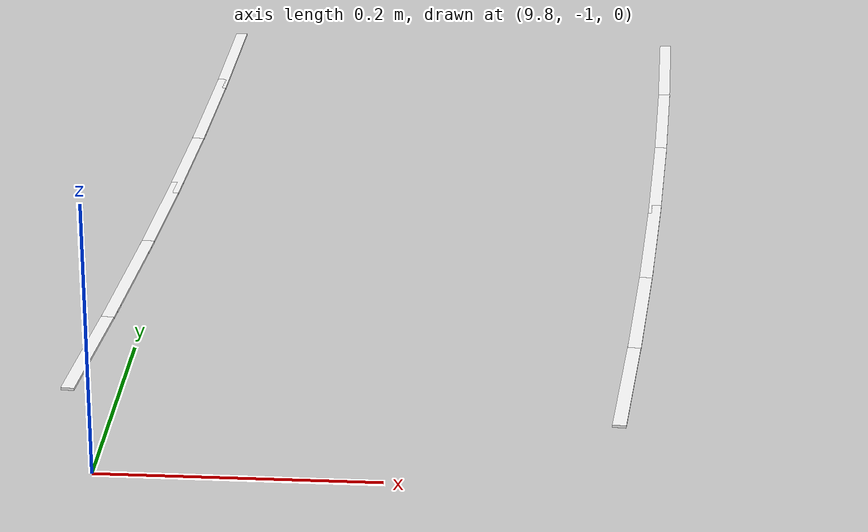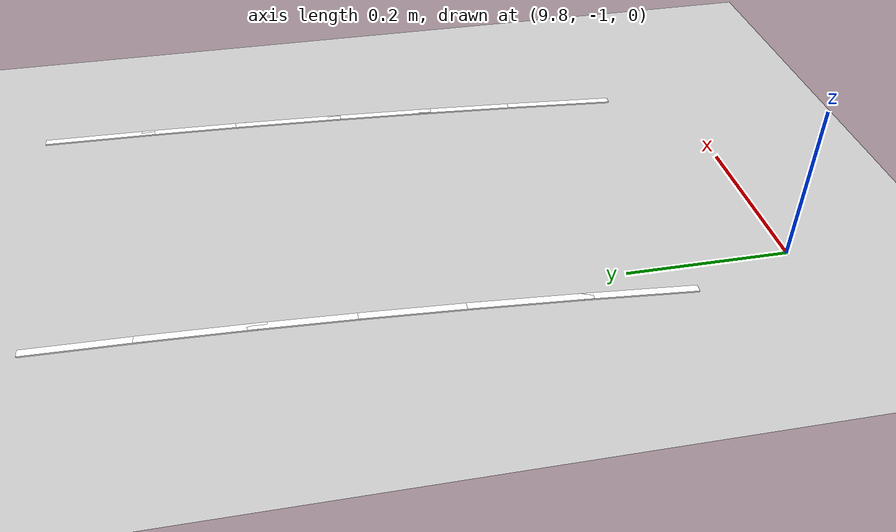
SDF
<sdf version="1.7">
 <world name="default">
  <model name="ground_plane">
   <static>1</static>
   <link name="link">
    <collision name="collision">
     <geometry><plane><normal>0 0 1</normal><size>100 100</size></plane></geometry>
     <surface>
      <contact><collide_bitmask>65535</collide_bitmask></contact>
      <friction><ode><mu>100</mu><mu2>50</mu2></ode></friction>
     </surface>
    </collision>
    <visual name="visual">
     <cast_shadows>0</cast_shadows>
     <geometry><plane><normal>0 0 1</normal><size>100 100</size></plane></geometry>
     <material>
      <script><uri>file://media/materials/scripts/gazebo.material</uri><name>Gazebo/Grey</name></script>
     </material>
    </visual>
   </link>
  </model>
  <model name="lane_line_left_493">
   <static>1</static>
   <link name="link">
    <pose>0 0 -0.004 0 -0 0</pose>
    <visual name="visual">
     <geometry><box><size>0.1457 0.01 0.01</size></box></geometry>
     <material><ambient>1 1 1 1</ambient><diffuse>1 1 1 1</diffuse></material>
    </visual>
    <collision name="collision"><geometry><box><size>0.1457 0.01 0.01</size></box></geometry></collision>
   </link>
   <pose>9.76713 -0.799572 0 0 -0 1.48911</pose>
  </model>
  <model name="lane_line_right_493">
   <static>1</static>
   <link name="link">
    <pose>0 0 -0.004 0 -0 0</pose>
    <visual name="visual">
     <geometry><box><size>0.1457 0.01 0.01</size></box></geometry>
     <material><ambient>1 1 1 1</ambient><diffuse>1 1 1 1</diffuse></material>
    </visual>
    <collision name="collision"><geometry><box><size>0.1457 0.01 0.01</size></box></geometry></collision>
   </link>
   <pose>10.1658 -0.832208 0 0 -0 1.48911</pose>
  </model>
  <model name="lane_line_left_494">
   <static>1</static>
   <link name="link">
    <pose>0 0 -0.004 0 -0 0</pose>
    <visual name="visual">
     <geometry><box><size>0.1457 0.01 0.01</size></box></geometry>
     <material><ambient>1 1 1 1</ambient><diffuse>1 1 1 1</diffuse></material>
    </visual>
    <collision name="collision"><geometry><box><size>0.1457 0.01 0.01</size></box></geometry></collision>
   </link>
   <pose>9.77641 -0.676775 0 0 -0 1.50168</pose>
  </model>
  <model name="lane_line_right_494">
   <static>1</static>
   <link name="link">
    <pose>0 0 -0.004 0 -0 0</pose>
    <visual name="visual">
     <geometry><box><size>0.1457 0.01 0.01</size></box></geometry>
     <material><ambient>1 1 1 1</ambient><diffuse>1 1 1 1</diffuse></material>
    </visual>
    <collision name="collision"><geometry><box><size>0.1457 0.01 0.01</size></box></geometry></collision>
   </link>
   <pose>10.1755 -0.704399 0 0 -0 1.50168</pose>
  </model>
  <model name="lane_line_left_495">
   <static>1</static>
   <link name="link">
    <pose>0 0 -0.004 0 -0 0</pose>
    <visual name="visual">
     <geometry><box><size>0.1457 0.01 0.01</size></box></geometry>
     <material><ambient>1 1 1 1</ambient><diffuse>1 1 1 1</diffuse></material>
    </visual>
    <collision name="collision"><geometry><box><size>0.1457 0.01 0.01</size></box></geometry></collision>
   </link>
   <pose>9.78414 -0.55387 0 0 -0 1.51425</pose>
  </model>
  <model name="lane_line_right_495">
   <static>1</static>
   <link name="link">
    <pose>0 0 -0.004 0 -0 0</pose>
    <visual name="visual">
     <geometry><box><size>0.1457 0.01 0.01</size></box></geometry>
     <material><ambient>1 1 1 1</ambient><diffuse>1 1 1 1</diffuse></material>
    </visual>
    <collision name="collision"><geometry><box><size>0.1457 0.01 0.01</size></box></geometry></collision>
   </link>
   <pose>10.1835 -0.576478 0 0 -0 1.51425</pose>
  </model>
  <model name="lane_line_left_496">
   <static>1</static>
   <link name="link">
    <pose>0 0 -0.004 0 -0 0</pose>
    <visual name="visual">
     <geometry><box><size>0.1457 0.01 0.01</size></box></geometry>
     <material><ambient>1 1 1 1</ambient><diffuse>1 1 1 1</diffuse></material>
    </visual>
    <collision name="collision"><geometry><box><size>0.1457 0.01 0.01</size></box></geometry></collision>
   </link>
   <pose>9.79033 -0.430879 0 0 -0 1.52681</pose>
  </model>
  <model name="lane_line_right_496">
   <static>1</static>
   <link name="link">
    <pose>0 0 -0.004 0 -0 0</pose>
    <visual name="visual">
     <geometry><box><size>0.1457 0.01 0.01</size></box></geometry>
     <material><ambient>1 1 1 1</ambient><diffuse>1 1 1 1</diffuse></material>
    </visual>
    <collision name="collision"><geometry><box><size>0.1457 0.01 0.01</size></box></geometry></collision>
   </link>
   <pose>10.1899 -0.448466 0 0 -0 1.52681</pose>
  </model>
  <model name="lane_line_left_497">
   <static>1</static>
   <link name="link">
    <pose>0 0 -0.004 0 -0 0</pose>
    <visual name="visual">
     <geometry><box><size>0.1457 0.01 0.01</size></box></geometry>
     <material><ambient>1 1 1 1</ambient><diffuse>1 1 1 1</diffuse></material>
    </visual>
    <collision name="collision"><geometry><box><size>0.1457 0.01 0.01</size></box></geometry></collision>
   </link>
   <pose>9.79497 -0.307819 0 0 -0 1.53938</pose>
  </model>
  <model name="lane_line_right_497">
   <static>1</static>
   <link name="link">
    <pose>0 0 -0.004 0 -0 0</pose>
    <visual name="visual">
     <geometry><box><size>0.1457 0.01 0.01</size></box></geometry>
     <material><ambient>1 1 1 1</ambient><diffuse>1 1 1 1</diffuse></material>
    </visual>
    <collision name="collision"><geometry><box><size>0.1457 0.01 0.01</size></box></geometry></collision>
   </link>
   <pose>10.1948 -0.320384 0 0 -0 1.53938</pose>
  </model>
  <model name="lane_line_left_498">
   <static>1</static>
   <link name="link">
    <pose>0 0 -0.004 0 -0 0</pose>
    <visual name="visual">
     <geometry><box><size>0.1457 0.01 0.01</size></box></geometry>
     <material><ambient>1 1 1 1</ambient><diffuse>1 1 1 1</diffuse></material>
    </visual>
    <collision name="collision"><geometry><box><size>0.1457 0.01 0.01</size></box></geometry></collision>
   </link>
   <pose>9.79806 -0.184711 0 0 -0 1.55195</pose>
  </model>
  <model name="lane_line_right_498">
   <static>1</static>
   <link name="link">
    <pose>0 0 -0.004 0 -0 0</pose>
    <visual name="visual">
     <geometry><box><size>0.1457 0.01 0.01</size></box></geometry>
     <material><ambient>1 1 1 1</ambient><diffuse>1 1 1 1</diffuse></material>
    </visual>
    <collision name="collision"><geometry><box><size>0.1457 0.01 0.01</size></box></geometry></collision>
   </link>
   <pose>10.198 -0.19225 0 0 -0 1.55195</pose>
  </model>
 </world>
</sdf>
